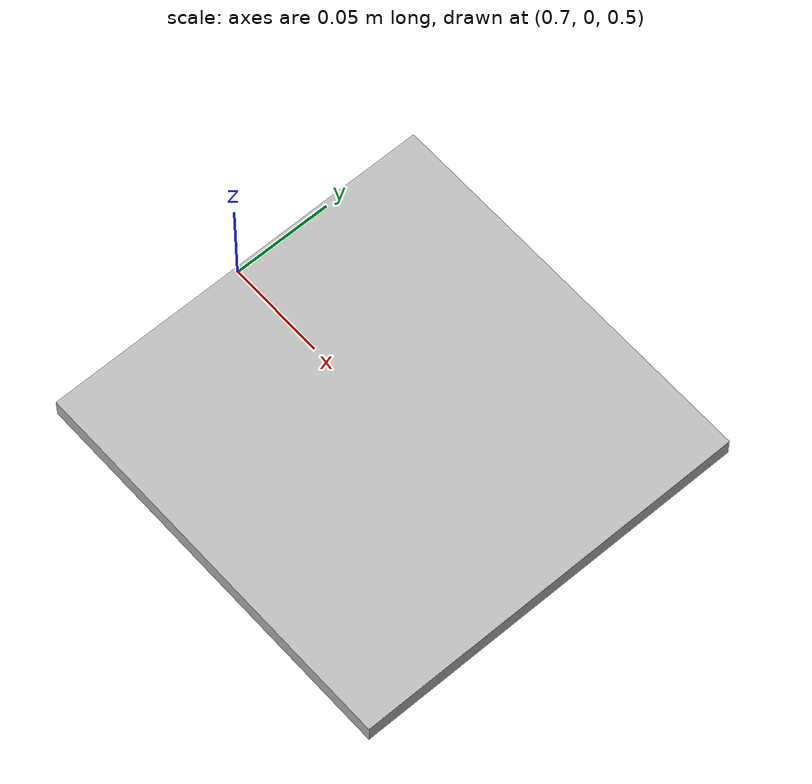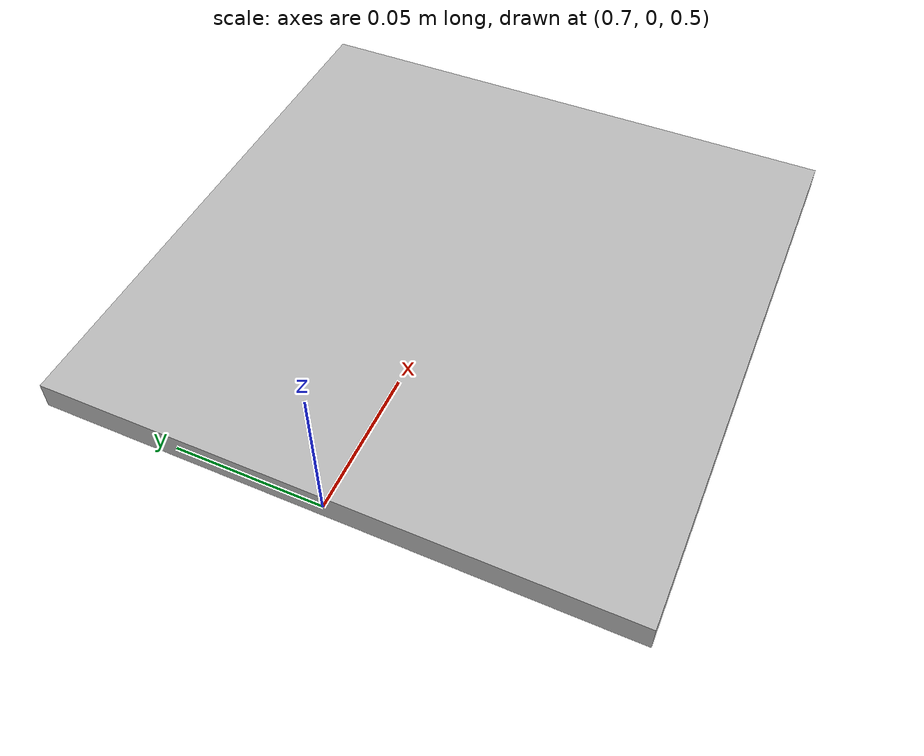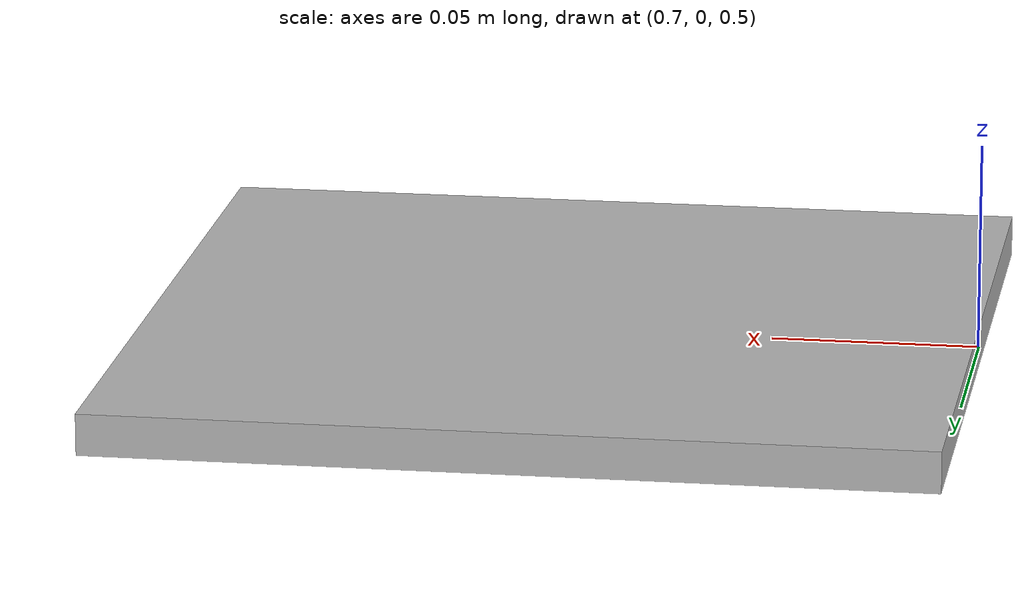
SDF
<?xml version="1.0" ?>
<sdf version="1.6">
  <world name="default">
    <plugin name="gazebo_ros_state" filename="libgazebo_ros_state.so">
      <ros>
        <namespace>/gazebo</namespace>
      </ros>
      <update_rate>30</update_rate>
    </plugin>
    <include>
      <uri>model://sun</uri>
    </include>
    <include>
      <uri>model://ground_plane</uri>
    </include>

    <include>
      <uri>model://aruco_marker_1</uri>
      <pose>0.8 0.0 0.5 0 0 0</pose>
    </include>

    <physics type="ode">
      <real_time_update_rate>1000.0</real_time_update_rate>
      <max_step_size>0.001</max_step_size>
      <real_time_factor>1</real_time_factor>
      <ode>
        <solver>
          <type>quick</type>
          <iters>150</iters>
          <precon_iters>0</precon_iters>
          <sor>1.2</sor>
        </solver>
      </ode>
    </physics>
    <gui fullscreen='0'>
      <camera name='user_camera'>
        <pose>2.5 2.5 1.5 0 0.3 2.4</pose>
        <view_controller>orbit</view_controller>
      </camera>
    </gui>

  </world>
</sdf>

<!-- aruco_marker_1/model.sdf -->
<sdf version="1.6">
  <model name="aruco_marker_1">
    <static>false</static>
    <link name="marker">
      <pose>0 0 0 0 0 0</pose>
      <gravity>false</gravity>
      <visual name="visual">
        <geometry>
          <box>
            <size>0.2 0.2 0.01</size>
          </box>
        </geometry>
        <material>
          <script>
            <uri>model://aruco_marker_1/materials/scripts</uri>
            <name>aruco_marker_1/aruco_1</name>
          </script>
        </material>
      </visual>
      <collision name="collision">
        <geometry>
          <box>
            <size>0.2 0.2 0.01</size>
          </box>
        </geometry>
      </collision>
    </link>
  </model>
</sdf>
